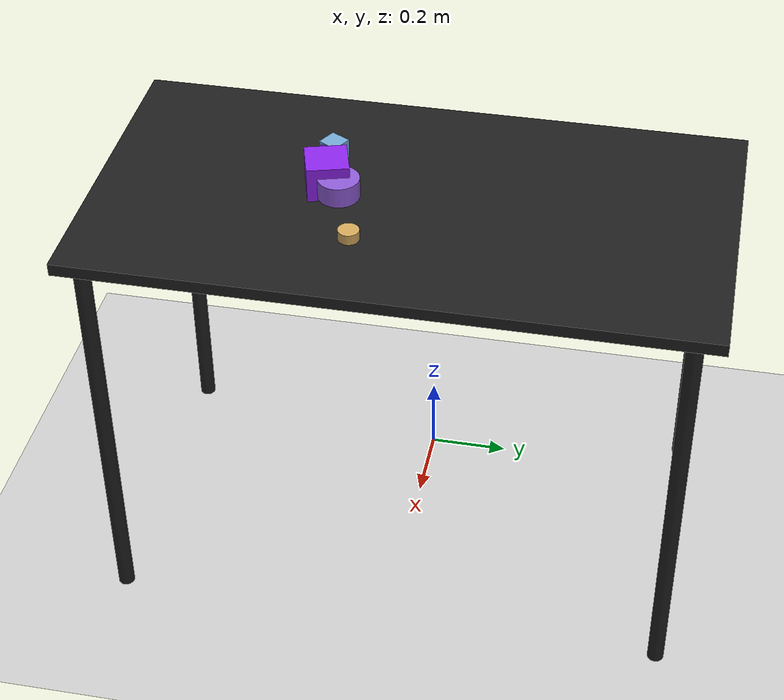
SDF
<?xml version="1.0" ?>
<sdf version="1.6">
  <world name="arm_world">
    <plugin filename="gz-sim-physics-system" name="gz::sim::systems::Physics">
      <engine>
        <filename>libgz-physics-bullet-featherstone-plugin.so</filename>
      </engine>
    </plugin>
    <plugin filename="gz-sim-user-commands-system" name="gz::sim::systems::UserCommands"/>
    <plugin filename="gz-sim-scene-broadcaster-system" name="gz::sim::systems::SceneBroadcaster"/>
    <plugin filename="gz-sim-sensors-system" name="gz::sim::systems::Sensors">
      <render_engine>ogre2</render_engine>
    </plugin>
    <gravity>0.0 0.0 -9.8</gravity>
    <scene>
      <shadows>false</shadows>
    </scene>
    <gui>
      <camera name="user_camera">
        <pose>0.75 -0.75 1.4 0 0.29 2.21</pose>
      </camera>
    </gui>
    <include>
      <uri>https://fuel.gazebosim.org/1.0/OpenRobotics/models/Sun</uri>
    </include>
    <model name="table">
      <static>true</static>
      <include>
        <uri>model://table</uri>
      </include>
      <pose>0.29 0 0 0 0 1.5708</pose>
    </model>
    <model name="ground_plane">
      <static>true</static>
      <link name="link">
        <collision name="collision">
          <geometry>
            <plane>
              <normal>0 0 1</normal>
            </plane>
          </geometry>
          <surface>
            <friction>
              <ode>
                <mu>1.0</mu>
                <mu2>1.0</mu2>
              </ode>
            </friction>
          </surface>
        </collision>
        <visual name="visual">
          <geometry>
            <plane>
              <normal>0 0 1</normal>
              <size>100 100</size>
            </plane>
          </geometry>
          <material>
            <ambient>0.8 0.8 0.8 1</ambient>
            <diffuse>0.8 0.8 0.8 1</diffuse>
            <specular>0.8 0.8 0.8 1</specular>
          </material>
        </visual>
      </link>
    </model>
    <model name="cube_m_0">
      <pose>0.171 -0.215 1.05 0 0 1.07</pose>
      <link name="cube_m_0_link">
        <collision name="cube_m_0_collision">
          <geometry>
            <box>
              <size>0.05 0.05 0.05</size>
            </box>
          </geometry>
        </collision>
        <visual name="cube_m_0_visual">
          <geometry>
            <box>
              <size>0.05 0.05 0.05</size>
            </box>
          </geometry>
          <material>
            <ambient>0.45 0.66 0.83 1</ambient>
            <diffuse>0.45 0.66 0.83 1</diffuse>
          </material>
        </visual>
        <velocity_decay>
          <linear>1</linear>
          <angular>1</angular>
        </velocity_decay>
      </link>
    </model>
    <model name="cylinder_l_1">
      <pose>0.321 -0.171 1.05 0 0 5.81</pose>
      <link name="cylinder_l_1_link">
        <collision name="cylinder_l_1_collision">
          <geometry>
            <cylinder>
              <radius>0.05</radius>
              <length>0.05</length>
            </cylinder>
          </geometry>
        </collision>
        <visual name="cylinder_l_1_visual">
          <geometry>
            <cylinder>
              <radius>0.05</radius>
              <length>0.05</length>
            </cylinder>
          </geometry>
          <material>
            <ambient>0.56 0.36 0.84 1</ambient>
            <diffuse>0.56 0.36 0.84 1</diffuse>
          </material>
        </visual>
        <velocity_decay>
          <linear>1</linear>
          <angular>1</angular>
        </velocity_decay>
      </link>
    </model>
    <model name="cylinder_m_2">
      <pose>0.499 -0.108 1.05 0 0 3.91</pose>
      <link name="cylinder_m_2_link">
        <collision name="cylinder_m_2_collision">
          <geometry>
            <cylinder>
              <radius>0.025</radius>
              <length>0.025</length>
            </cylinder>
          </geometry>
        </collision>
        <visual name="cylinder_m_2_visual">
          <geometry>
            <cylinder>
              <radius>0.025</radius>
              <length>0.025</length>
            </cylinder>
          </geometry>
          <material>
            <ambient>0.83 0.66 0.36 1</ambient>
            <diffuse>0.83 0.66 0.36 1</diffuse>
          </material>
        </visual>
        <velocity_decay>
          <linear>1</linear>
          <angular>1</angular>
        </velocity_decay>
      </link>
    </model>
    <model name="sphere_m_3">
      <pose>0.18 -0.227 1.05 0 0 6.2</pose>
      <link name="sphere_m_3_link">
        <collision name="sphere_m_3_collision">
          <geometry>
            <sphere>
              <radius>0.025</radius>
            </sphere>
          </geometry>
        </collision>
        <visual name="sphere_m_3_visual">
          <geometry>
            <sphere>
              <radius>0.025</radius>
            </sphere>
          </geometry>
          <material>
            <ambient>0.48 0.12 0.73 1</ambient>
            <diffuse>0.48 0.12 0.73 1</diffuse>
          </material>
        </visual>
        <velocity_decay>
          <linear>1</linear>
          <angular>1</angular>
        </velocity_decay>
      </link>
    </model>
    <model name="cube_l_4">
      <pose>0.283 -0.207 1.05 0 0 3.43</pose>
      <link name="cube_l_4_link">
        <collision name="cube_l_4_collision">
          <geometry>
            <box>
              <size>0.1 0.1 0.1</size>
            </box>
          </geometry>
        </collision>
        <visual name="cube_l_4_visual">
          <geometry>
            <box>
              <size>0.1 0.1 0.1</size>
            </box>
          </geometry>
          <material>
            <ambient>0.55 0.14 0.92 1</ambient>
            <diffuse>0.55 0.14 0.92 1</diffuse>
          </material>
        </visual>
        <velocity_decay>
          <linear>1</linear>
          <angular>1</angular>
        </velocity_decay>
      </link>
    </model>
  </world>
</sdf>

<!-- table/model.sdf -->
<sdf version="1.5">
  <model name="table">
    <static>true</static>
    <link name="link">
      <collision name="surface">
        <pose>0 0 1.0 0 0 0</pose>
        <geometry>
          <box>
            <size>1.5 0.8 0.03</size>
          </box>
        </geometry>
        <surface>
          <friction>
            <ode>
              <mu>0.6</mu>
              <mu2>0.6</mu2>
            </ode>
          </friction>
        </surface>
      </collision>
      <visual name="surface">
        <pose>0 0 1.0 0 0 0</pose>
        <geometry>
          <box>
            <size>1.5 0.8 0.03</size>
          </box>
        </geometry>
        <material>
          <script>
            <uri>file://media/materials/scripts/gazebo.material</uri>
            <name>Gazebo/Black</name>
          </script>
        </material>
      </visual>
      <collision name="front_left_leg">
        <pose>0.68 0.38 0.5 0 0 0</pose>
        <geometry>
          <cylinder>
            <radius>0.02</radius>
            <length>1.0</length>
          </cylinder>
        </geometry>
      </collision>
      <visual name="front_left_leg">
        <pose>0.68 0.38 0.5 0 0 0</pose>
        <geometry>
          <cylinder>
            <radius>0.02</radius>
            <length>1.0</length>
          </cylinder>
        </geometry>
        <material>
          <script>
            <uri>file://media/materials/scripts/gazebo.material</uri>
            <name>Gazebo/Black</name>
          </script>
        </material>
      </visual>
      <collision name="front_right_leg">
        <pose>0.68 -0.38 0.5 0 0 0</pose>
        <geometry>
          <cylinder>
            <radius>0.02</radius>
            <length>1.0</length>
          </cylinder>
        </geometry>
      </collision>
      <visual name="front_right_leg">
        <pose>0.68 -0.38 0.5 0 0 0</pose>
        <geometry>
          <cylinder>
            <radius>0.02</radius>
            <length>1.0</length>
          </cylinder>
        </geometry>
        <material>
          <script>
            <uri>file://media/materials/scripts/gazebo.material</uri>
            <name>Gazebo/Black</name>
          </script>
        </material>
      </visual>
      <collision name="back_right_leg">
        <pose>-0.68 -0.38 0.5 0 0 0</pose>
        <geometry>
          <cylinder>
            <radius>0.02</radius>
            <length>1.0</length>
          </cylinder>
        </geometry>
      </collision>
      <visual name="back_right_leg">
        <pose>-0.68 -0.38 0.5 0 0 0</pose>
        <geometry>
          <cylinder>
            <radius>0.02</radius>
            <length>1.0</length>
          </cylinder>
        </geometry>
        <material>
          <script>
            <uri>file://media/materials/scripts/gazebo.material</uri>
            <name>Gazebo/Black</name>
          </script>
        </material>
      </visual>
      <collision name="back_left_leg">
        <pose>-0.68 0.38 0.5 0 0 0</pose>
        <geometry>
          <cylinder>
            <radius>0.02</radius>
            <length>1.0</length>
          </cylinder>
        </geometry>
      </collision>
      <visual name="back_left_leg">
        <pose>-0.68 0.38 0.5 0 0 0</pose>
        <geometry>
          <cylinder>
            <radius>0.02</radius>
            <length>1.0</length>
          </cylinder>
        </geometry>
        <material>
          <script>
            <uri>file://media/materials/scripts/gazebo.material</uri>
            <name>Gazebo/Black</name>
          </script>
        </material>
      </visual>
    </link>
  </model>
</sdf>
